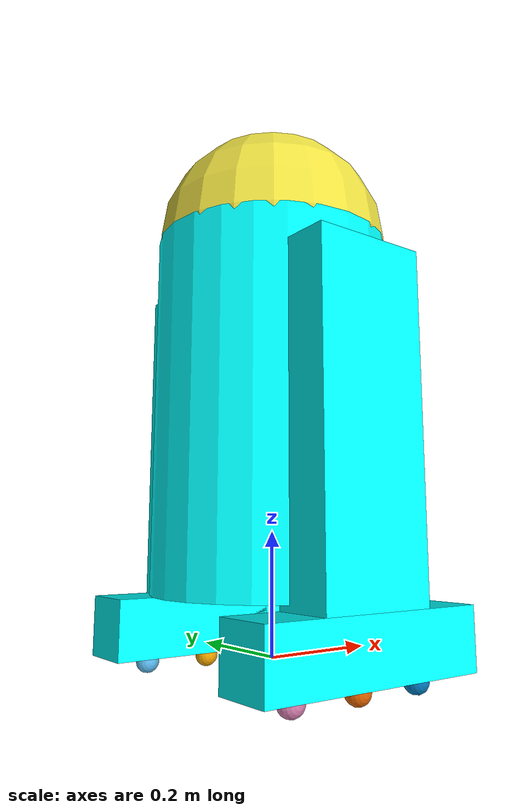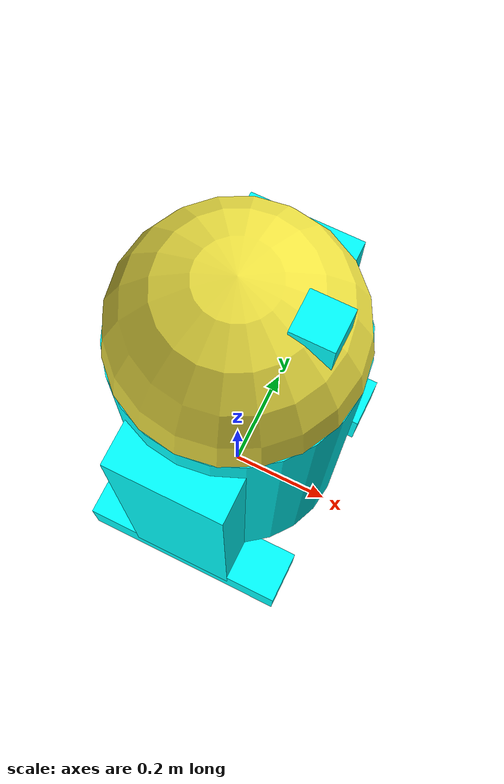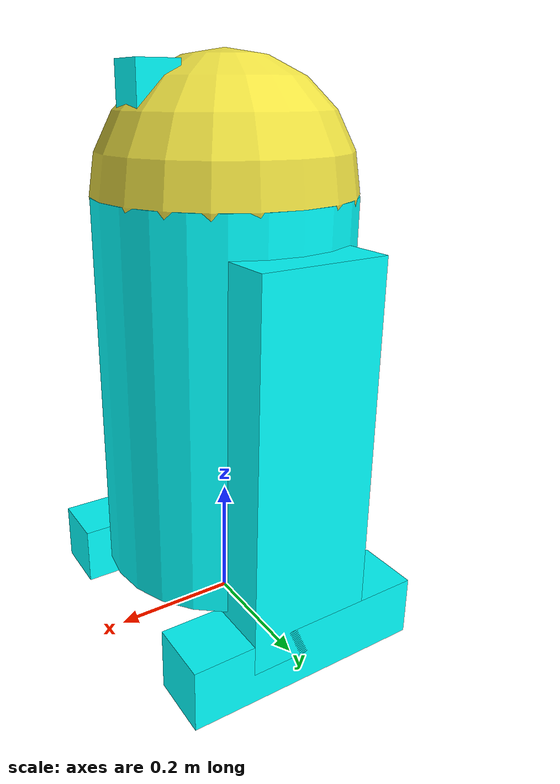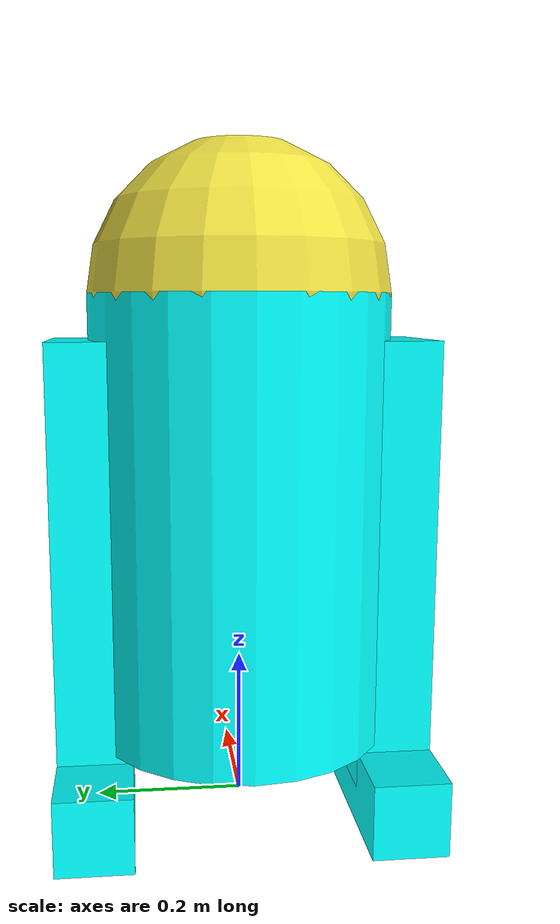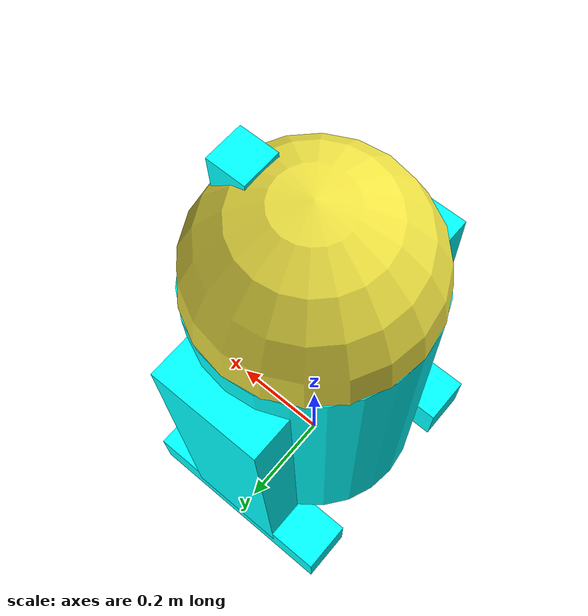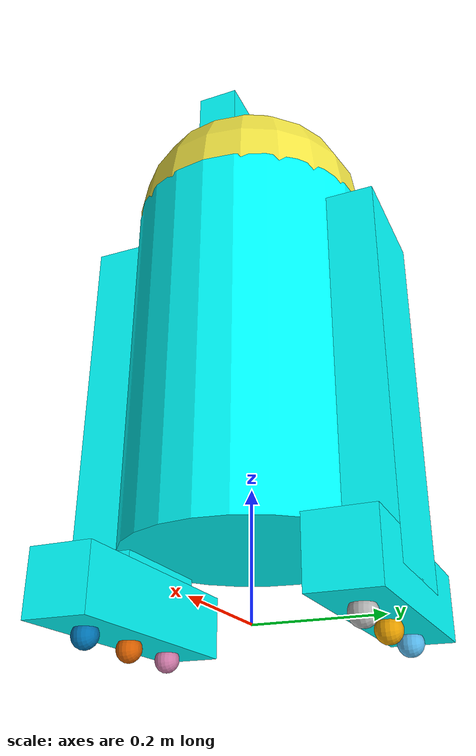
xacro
<?xml version="1.0"?>
<robot name="myfirstrobot"
  xmlns:xacro="http://www.ros.org/wiki/xacro">

  <xacro:include filename="macros/link_geometry.urdf.xacro" />
  <xacro:include filename="macros/properties.urdf.xacro" />

  <xacro:include filename="macros/parts/base.urdf.xacro" />
  <xacro:include filename="macros/parts/head.urdf.xacro" />
  <xacro:include filename="macros/parts/leg.urdf.xacro" />

  <xacro:include filename="simulation/gazebo_base.urdf.xacro" />
  <xacro:include filename="simulation/gazebo_laser.urdf.xacro" />
  <xacro:include filename="simulation/gazebo_camera.urdf.xacro" />
  <xacro:include filename="simulation/imu.urdf.xacro"/>

  <!-- Robot -->

  <xacro:base name="base_link"/>
  <xacro:head name="head" parent="base_link"/>
  <xacro:leg name="left" parent="base_link">
    <origin xyz="0  ${robot_scale/3} -${robot_scale/10}" rpy="0 0 0"/>
  </xacro:leg>
  <xacro:leg name="right" parent="base_link">
    <origin xyz="0 -${robot_scale/3} -${robot_scale/10}" rpy="0 0 0"/>
  </xacro:leg>

  <!-- IMU -->
  <xacro:imu name="imu" parent="base_link">
    <origin xyz="0.0 0.0 0.055" rpy="0 0 0"/>
  </xacro:imu>

  <!-- Plugins -->
  <xacro:gazebo_base/>
  <xacro:gazebo_laser reference="base_scan"/>
  <xacro:gazebo_camera reference="head_box"/>

</robot>

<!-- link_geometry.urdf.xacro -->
<robot xmlns:xacro="http://ros.org/wiki/xacro">

      <material name="Cyan">
        <color rgba="0 1.0 1.0 1.0"/>
      </material>

  <!-- box -->
  <xacro:macro name="create_box" params="m x y z *origin">
    <visual>
      <xacro:insert_block name="origin"/>
      <geometry>
        <box size="${x} ${y} ${z}"/>
      </geometry>
      <material name="Cyan"/>
    </visual>
    <collision>
      <xacro:insert_block name="origin"/>
      <geometry>
        <box size="${x} ${y} ${z}"/>
      </geometry>
    </collision>
    <inertial>
      <mass value="${m}"/>
      <inertia
        ixx="${1/12*m*(y*y+z*z)}" ixy="0.0" ixz="0.0"
        iyy="${1/12*m*(x*x+z*z)}" iyz="0.0"
        izz="${1/12*m*(x*x+y*y)}"/>
    </inertial>
  </xacro:macro>

  <!-- cylinder -->
  <xacro:macro name="create_cylinder" params="m r l *origin">
    <visual>
      <xacro:insert_block name="origin"/>
      <geometry>
        <cylinder radius="${r}" length="${l}"/>
      </geometry>
      <material name="Cyan"/>
    </visual>
    <collision>
      <xacro:insert_block name="origin"/>
      <geometry>
        <cylinder radius="${r}" length="${l}"/>
      </geometry>
    </collision>
    <inertial>
      <mass value="${m}"/>
      <inertia
        ixx="${1/12*m*(3*r*r+l*l)}" ixy="0.0" ixz="0.0"
        iyy="${1/12*m*(3*r*r+l*l)}" iyz="0.0"
        izz="${1/2*(m*r*r)}"/>
    </inertial>
  </xacro:macro>

  <!-- sphere -->
  <xacro:macro name="create_sphere" params="m r *origin">
    <visual>
      <xacro:insert_block name="origin" />
      <geometry>
        <sphere radius="${r}"/>
      </geometry>
    </visual>
    <collision>
      <xacro:insert_block name="origin" />
      <geometry>
        <sphere radius="${r}"/>
      </geometry>
    </collision>
    <inertial>
      <mass value="${m}"/>
      <inertia
        ixx="${(2/5)*m*r*r}" ixy="0.0" ixz="0.0"
        iyy="${(2/5)*m*r*r}" iyz="0.0"
        izz="${(2/5)*m*r*r}"/>
    </inertial>
  </xacro:macro>

</robot>

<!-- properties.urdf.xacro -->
<robot xmlns:xacro="http://ros.org/wiki/xacro">

  <xacro:property name="PI"             value="3.14159265" />

  <xacro:property name="robot_scale"     value="1.0" />
  <xacro:property name="robot_mass"      value="10" />

  <xacro:property name="body_mass"      value="${35 * robot_mass/100}" />
  <xacro:property name="body_radius"    value="${robot_scale/3}" />
  <xacro:property name="body_length"    value="${robot_scale}" />

  <xacro:property name="head_mass"      value="${5 * robot_mass/100}" />
  <xacro:property name="head_radius"    value="${body_radius}" />

  <xacro:property name="leg_mass"       value="${5 * robot_mass/100}" />
  <xacro:property name="leg_x"          value="${robot_scale/3}" />
  <xacro:property name="leg_y"          value="${robot_scale/6}" />
  <xacro:property name="leg_z"          value="${robot_scale}" />

  <xacro:property name="leg_base_mass"  value="${15 * robot_mass/100}" />
  <xacro:property name="leg_base_x"     value="${2*robot_scale/3}" />
  <xacro:property name="leg_base_y"     value="${robot_scale/6}" />
  <xacro:property name="leg_base_z"     value="${robot_scale/6}" />

  <xacro:property name="wheel_mass"      value="${5 * robot_mass/100}" />
  <xacro:property name="wheel_radius"    value="${body_radius/10}" />

</robot>

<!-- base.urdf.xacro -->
<robot xmlns:xacro="http://ros.org/wiki/xacro">

  <xacro:macro name="base" params="name">

    <!-- link: base_footprint -->
    <link name='base_footprint'/>

    <!-- joint: base_footprint -> base -->
    <joint name="joint_base_footprint_to_base" type="fixed">
      <origin xyz="0 0 ${2*robot_scale/3}" rpy="0 0 0"/>
      <parent link="base_footprint"/>
      <child link="${name}"/>
    </joint>

    <!-- link: base -->
    <link name="${name}">
      <xacro:create_cylinder m="${body_mass}" r="${body_radius}" l="${body_length}">
        <origin xyz="0 0 0" rpy="0 0 0"/>
      </xacro:create_cylinder>
    </link>

  <joint name="base_to_laser" type="fixed">
    <origin xyz="0 0 -0.2" rpy="0 0 0"/>
    <parent link="${name}"/>
    <child link="base_scan"/>
  </joint>
  <link name="base_scan">
  </link>

  </xacro:macro>

</robot>

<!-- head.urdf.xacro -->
<robot xmlns:xacro="http://ros.org/wiki/xacro">

  <xacro:property name="robot_scale" value="0.6" />

    <xacro:macro name="head" params="name parent">

      <!-- link: head -->
      <link name="${name}">
        <xacro:create_sphere m="${head_mass}" r="${head_radius}">
          <origin xyz="0 0 0" rpy="0 0 0"/>
        </xacro:create_sphere>
      </link>

      <!-- link: head_box -->
      <link name="${name}_box">
        <xacro:create_box m="${head_mass/100}" x="${head_radius/3}" y="${head_radius/3}" z="${head_radius/3}">
          <origin xyz="0 0 0" rpy="0 0 0"/>
        </xacro:create_box>
      </link>

      <!-- joint: base -> head -->
      <joint name="joint_${parent}_to_${name}" type="revolute">
        <origin xyz="0 0 ${robot_scale/2}" rpy="0 0 0"/>
        <parent link="${parent}"/>
        <child link="${name}"/>
        <axis xyz="0 0 1"/>
        <limit effort="30" velocity="0.5" lower="-${PI/2}" upper="${PI/2}"/>
      </joint>

      <!-- joint: head -> head_box -->
      <joint name="joint_${name}_to_${name}_box" type="fixed">
        <origin xyz="${robot_scale/5} 0 ${robot_scale/4}" rpy="0 0 0"/>
        <parent link="${name}"/>
        <child link="${name}_box"/>
      </joint>

    </xacro:macro>

</robot>

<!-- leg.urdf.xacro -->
<robot xmlns:xacro="http://ros.org/wiki/xacro">

  <xacro:include filename="wheel.urdf.xacro" />

  <xacro:macro name="leg" params="name parent *origin">

    <!-- joint: parent -> leg -->
    <joint name="${parent}_to_${name}_leg" type="fixed">
      <xacro:insert_block name="origin" />
      <parent link="${parent}"/>
      <child link="${name}_leg"/>
    </joint>

    <!-- link: leg -->
    <link name="${name}_leg">
      <xacro:create_box m="${leg_mass}" x="${leg_x}" y="${leg_y}" z="${leg_z}">
        <origin xyz="0 0 0" rpy="0 0 0"/>
      </xacro:create_box>
    </link>

    <!-- joint: leg -> leg_base -->
    <joint name="${name}_leg_to_${name}_leg_base" type="fixed">
      <origin xyz="0 0 -${robot_scale/2}" rpy="0 0 0"/>
      <parent link="${name}_leg"/>
      <child link="${name}_leg_base"/>
    </joint>

    <!-- link: leg_base -->
    <link name="${name}_leg_base">
      <xacro:create_box m="${leg_base_mass}" x="${2*robot_scale/3}" y="${robot_scale/6}" z="${robot_scale/6}">
        <origin xyz="0 0 0" rpy="0 0 0"/>
      </xacro:create_box>
    </link>

    <!-- front wheel -->
    <xacro:wheel name="${name}_front_wheel" parent="${name}_leg_base">
      <origin xyz="${robot_scale/5} 0 -${robot_scale/10}" rpy="-1.57 0 0"/>
    </xacro:wheel>

    <!-- center wheel -->
    <xacro:wheel name="${name}_center_wheel" parent="${name}_leg_base">
      <origin xyz="0 0 -${robot_scale/10 + 0.001}" rpy="-1.57 0 0"/>
    </xacro:wheel>

    <!-- back wheel -->
    <xacro:wheel name="${name}_back_wheel" parent="${name}_leg_base">
      <origin xyz="-${robot_scale/5} 0 -${robot_scale/10}" rpy="-1.57 0 0"/>
    </xacro:wheel>

  </xacro:macro>

</robot>

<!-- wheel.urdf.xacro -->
<robot xmlns:xacro="http://ros.org/wiki/xacro">

  <xacro:macro name="wheel" params="name parent *origin">

    <!-- joint: parent_base -> wheel -->
    <joint name="${parent}_to_${name}" type="continuous">
      <xacro:insert_block name="origin" />
      <parent link="${parent}"/>
      <child link="${name}"/>
      <axis xyz="0 0 1"/>
    </joint>

    <!-- link: wheel -->
    <link name="${name}">
      <origin xyz="0 0 0" rpy="${-PI/2} 0 0"/>
      <xacro:create_sphere m="${wheel_mass}" r="${wheel_radius}">
        <origin xyz="0 0 0" rpy="0 0 0"/>
      </xacro:create_sphere>
    </link>

  </xacro:macro>

</robot>

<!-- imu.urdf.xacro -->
<robot xmlns:xacro="http://ros.org/wiki/xacro">

  <xacro:macro name="imu" params="name parent *origin">

    <joint name="${parent}_to_${name}" type="fixed">
        <xacro:insert_block name="origin" />
        <parent link="${parent}"/>
        <child link="${name}"/>
    </joint>

    <link name="${name}">
      <visual>
        <geometry>
          <box size="0.2 0.2 0.05"/>
        </geometry>
      </visual>
      <collision>
        <geometry>
          <box size="0.2 0.2 0.05"/>
        </geometry>
      </collision>
      <inertial>
        <mass value="1e-5" />
        <origin xyz="0 0 0" rpy="0 0 0"/>
        <inertia ixx="1e-6" ixy="0" ixz="0" iyy="1e-6" iyz="0" izz="1e-6" />
      </inertial>
    </link>

    <gazebo reference="${name}">
      <gravity>true</gravity>
      <sensor name="imu_sensor" type="imu">
        <always_on>true</always_on>
        <update_rate>100</update_rate>
        <visualize>true</visualize>
        <pose>0 0 0 0 0 0</pose>
        <plugin filename="libgazebo_ros_imu_sensor.so" name="imu_plugin">
          <ros>
            <!-- publish to /imu/data -->
            <remapping>~/out:=imu</remapping>
          </ros>
          <topicName>${name}</topicName>
          <bodyName>${name}</bodyName>
          <updateRateHZ>50.0</updateRateHZ>
          <gaussianNoise>0.005</gaussianNoise>
          <xyzOffset>0 0 0</xyzOffset>
          <rpyOffset>0 0 0</rpyOffset>
          <frameName>${name}</frameName>
        </plugin>
      </sensor>
    </gazebo>

  </xacro:macro>

</robot>
